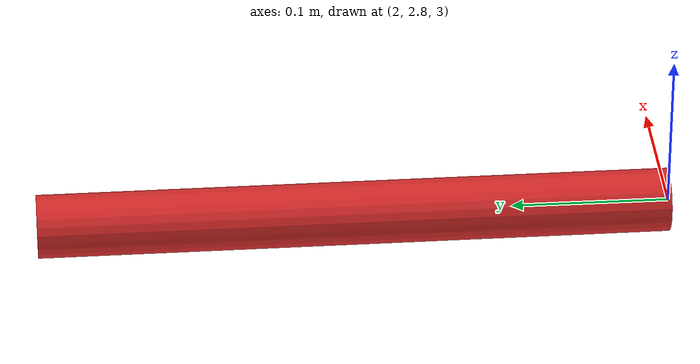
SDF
<?xml version="1.0" ?>
<sdf version="1.4">
  <world name="default">
    <include>
      <uri>model://ground_plane</uri>
    </include>
    <include>
      <uri>model://sun</uri>
    </include>
    <include>
      <uri>model://object</uri>
      <name>object</name>
      <pose>2.0 3.0 3 0 0 0</pose>
    </include>
  </world>
</sdf>

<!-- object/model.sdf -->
<sdf version="1.5">
  <model name="object">
    <link name="link">
      <pose>0 0 0 1.57079632679 0 0</pose>
      <gravity>false</gravity>
      <inertial name="inertial">
        <pose>0 0 0 0 0 0</pose>
        <mass>0.00001</mass>
        <inertia>
          <ixx>0.00001</ixx>
          <ixy>0</ixy>
          <ixz>0</ixz>
          <iyy>0.00001</iyy>
          <iyz>0</iyz>
          <izz>0.00001</izz>
        </inertia>
      </inertial>

      <collision name="collision">
        <geometry>
          <cylinder>
            <length>0.4</length>
            <radius>0.02</radius>
          </cylinder>
        </geometry>
        <surface>
          <contact>
            <ode>
              <min_depth>0.001</min_depth>
              <max_vel>1000</max_vel>
            </ode>
          </contact>
          <friction>
            <ode>
              <mu>100000</mu>
              <mu2>100000</mu2>
            </ode>
          </friction>
        </surface>
      </collision>

      <visual name="visual">
        <cast_shadows>false</cast_shadows>
        <pose>0 0 0 0 0 0</pose>
        <geometry>
          <cylinder>
            <length>0.4</length>
            <radius>0.02</radius>
          </cylinder>
        </geometry>
        <material>
          <script>
            <uri>__default__</uri>
            <name>Gazebo/Red</name>
          </script>
        </material>
      </visual>
    </link>
  </model>
</sdf>
